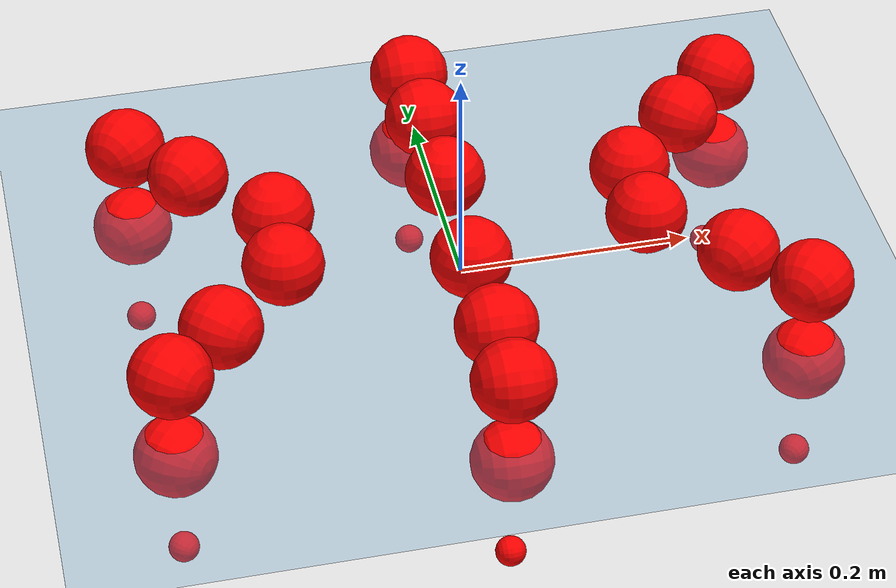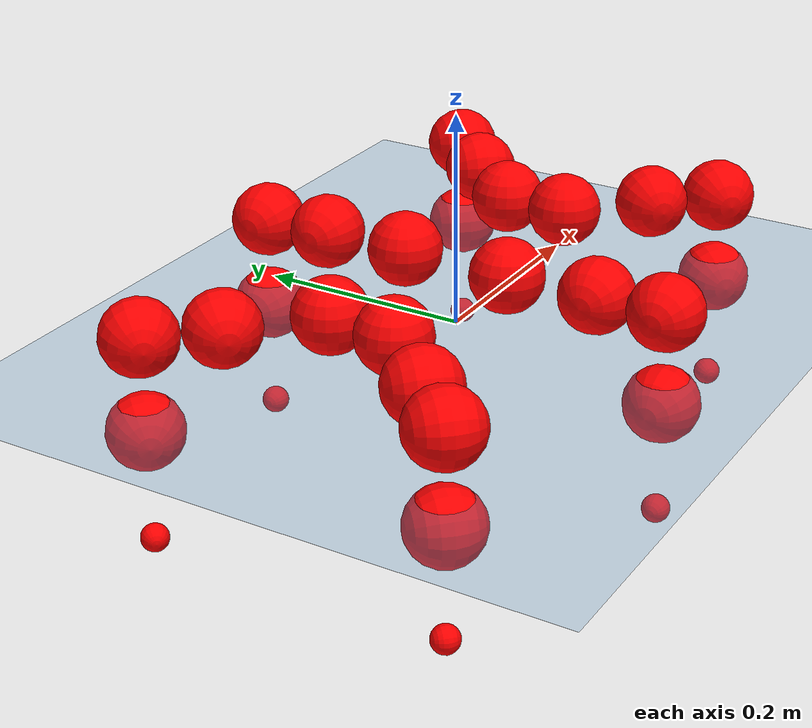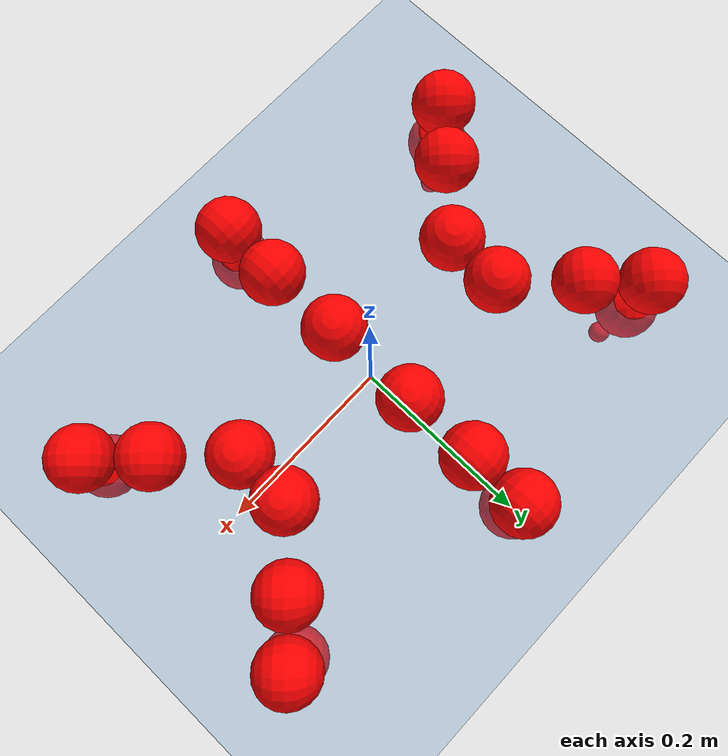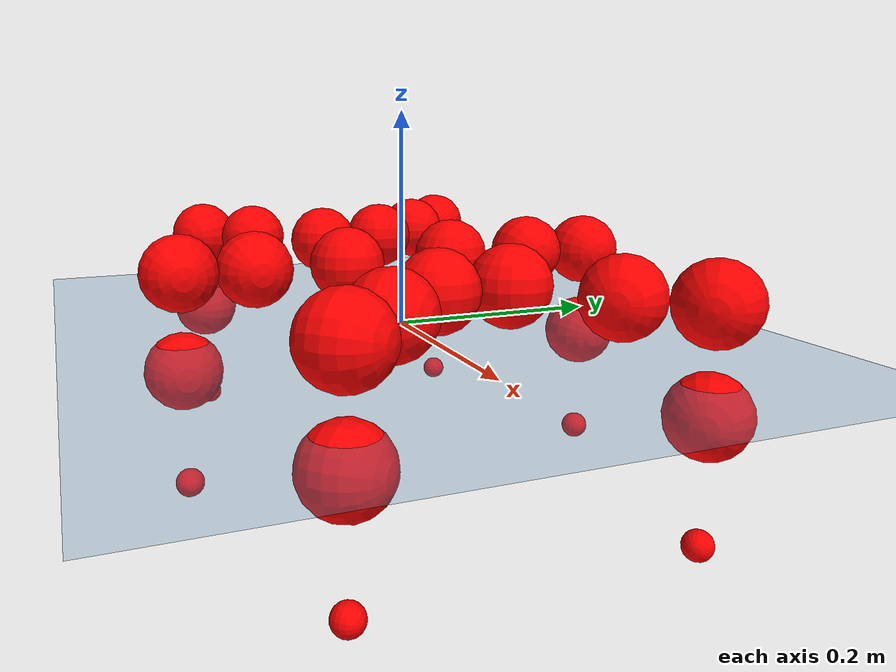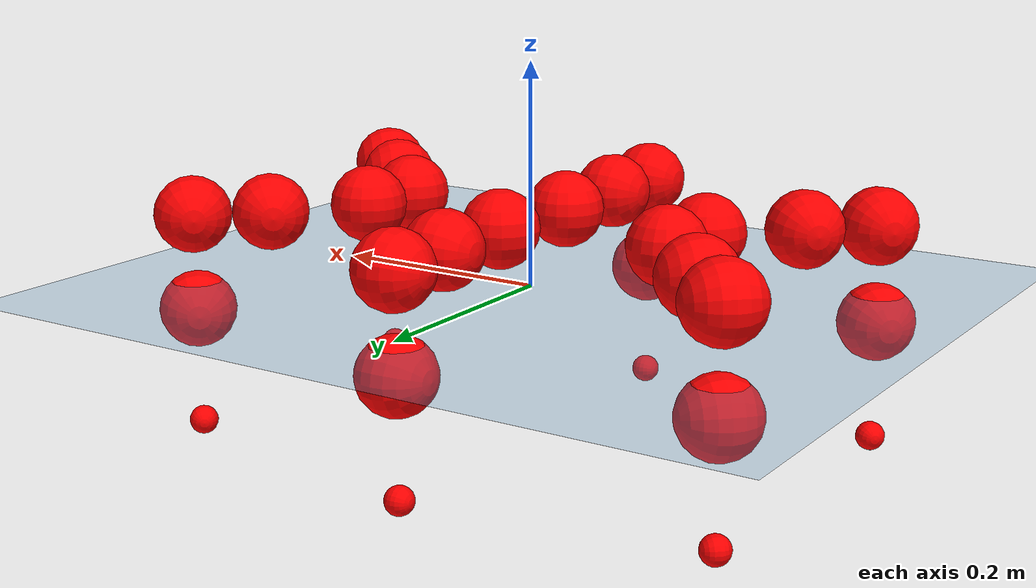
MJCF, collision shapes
<mujoco model="Golem">
  <compiler angle="radian" assetdir="assets" balanceinertia="true" inertiafromgeom="false"/>

  <option timestep="0.005" density="1.2" viscosity="2e-05"/>

  <size nkey="1"/>

  <visual>
    <quality shadowsize="8192"/>
    <map shadowclip="0.5"/>
  </visual>

  <default>
    <default class="/">
      <joint armature="0.01" damping="0.01" frictionloss="0.01"/>
      <geom contype="0" conaffinity="0" group="1" solref="-1000 -80"/>
      <site size="0.01 0.005 0.005" group="5"/>
      <general forcelimited="true" biastype="affine" gainprm="25" biasprm="0 -25 -0.5"/>
      <default class="visual">
        <geom type="mesh" group="2"/>
      </default>
      <default class="collision">
        <geom group="3"/>
      </default>
      <default class="foot">
        <geom size="0.01 0 0" condim="6" group="4" priority="1" solimp="0.015 1 0.01"/>
      </default>
      <default class="reward_collision_sphere">
        <geom group="5" rgba="1 0 0 1"/>
      </default>
    </default>
  </default>

  <asset>
    <texture type="skybox" colorspace="auto" name="//unnamed_texture_0" builtin="gradient" rgb1="0.95 0.95 0.95" rgb2="0.95 0.95 0.95" width="100" height="600"/>
    <texture type="2d" colorspace="auto" name="texplane" builtin="checker" rgb1="0.345 0.575 0.748" rgb2="0.345 0.575 0.748" markrgb="1 1 1" width="512" height="512"/>
    <material name="MatPlane" class="/" texture="texplane" texuniform="true" texrepeat="2 2" specular="0.9"/>
    <mesh name="body" class="/" file="body.stl" scale="0.001 0.001 0.001"/>
    <mesh name="coxa" class="/" file="coxa.stl" scale="0.001 0.001 0.001"/>
    <mesh name="femur" class="/" file="femur.stl" scale="0.001 0.001 0.001"/>
    <mesh name="tibia" class="/" file="tibia.stl" scale="0.001 0.001 0.001"/>
    <mesh name="tarsus" class="/" file="tarsus.stl" scale="0.001 0.001 0.001"/>
  </asset>

  <worldbody>
    <geom name="floor" class="/" size="100 100 0.125" type="plane" group="0" material="MatPlane"/>
    <light name="toplight_shadow" class="/" pos="0 0 5" dir="0.0990148 0.0990148 -0.990148" type="directional" ambient="0.04 0.04 0.04" diffuse="0.55 0.55 0.55" specular="0.12 0.12 0.12"/>
    <light name="toplight_fill" class="/" pos="0 0 5" dir="0.0990148 0.0990148 -0.990148" type="directional" castshadow="false" ambient="0.04 0.04 0.04" diffuse="0.3 0.3 0.3" specular="0.08 0.08 0.08"/>
    <body name="trunk" pos="-0.000539373 -0.000162266 0.000276779" quat="1 -0.00083326 -0.000310021 0.000325299">
      <inertial pos="0.000377275 0.00194616 -0.00145436" quat="0.999997 0.00165407 -0.0011802 0.00112942" mass="2.36655" diaginertia="0.0092313 0.00101115 0.00841768"/>
      <joint name="//unnamed_joint_0" type="free"/>
      <geom name="//unnamed_geom_1" class="/" pos="0 0 0.0621277" quat="1 0 0 0" type="mesh" rgba="0.9 0.9 0.9 1" mesh="body"/>
      <site name="imu" class="/" pos="0.130259 0.00598306 0.100548" size="0.00864505"/>
      <camera name="track" class="/" pos="0 -1.26684 0" quat="0.707107 0.707107 0 0" mode="trackcom"/>
      <camera name="ego_camera" class="/" pos="0.128615 0 0.0970745" quat="-0.5 -0.5 0.5 0.5"/>
      <body name="coxa_RR" pos="-0.176537 -0.052149 0.0619398" quat="0.382166 -0.000514096 0.000139419 -0.924094">
        <inertial pos="-8.89762e-05 -0.000774007 -0.000612821" quat="0.999938 0.00101197 0.0107121 0.00269523" mass="0.135298" diaginertia="0.00966042 0.00102777 0.00889751"/>
        <joint name="coxa_joint_RR" class="/" pos="0 0 0" axis="0.000419309 0.00199624 -0.999998" range="-3.14102 3.09461" armature="0.00956482" damping="0.00565356" frictionloss="0.00855623"/>
        <geom name="//unnamed_geom_2" class="/" type="mesh" rgba="0.2 0.2 0.2 1" mesh="coxa"/>
        <geom name="//unnamed_geom_3" class="reward_collision_sphere" size="0.0345802" pos="-0.0296805 0 0"/>
        <body name="femur_RR" pos="0.0592433 0.00177174 -0.00122149" quat="0.50005 -0.500027 0.499978 0.499945">
          <inertial pos="0.00166344 -0.00107491 0.000475622" quat="0.999969 -0.00598844 -0.00193238 0.00462663" mass="0.129917" diaginertia="0.00944897 0.0010189 0.00863067"/>
          <joint name="femur_joint_RR" class="/" pos="0 0 0" axis="-0.00104426 -0.000306959 -0.999999" range="-3.14708 3.14073" armature="0.0086966" damping="0.00349045" frictionloss="0.00823425"/>
          <geom name="//unnamed_geom_4" class="/" type="mesh" rgba="0.9 0.9 0.9 1" mesh="femur"/>
          <geom name="//unnamed_geom_5" class="reward_collision_sphere" size="0.0345802"/>
          <body name="tibia_RR" pos="0.000716115 -0.0676132 0.000174831" quat="0.000112842 1 7.07303e-05 -6.85144e-05">
            <inertial pos="-0.000638005 0.000755401 0.000222852" quat="0.999989 -0.00171768 0.00358433 -0.00237399" mass="0.132253" diaginertia="0.00932588 0.0010092 0.00866977"/>
            <joint name="tibia_joint_RR" class="/" pos="0 0 0" axis="0.00455094 0.00450467 0.999979" range="-3.12012 3.14399" armature="0.00862906" damping="0.000382947" frictionloss="0.00852129"/>
            <geom name="//unnamed_geom_6" class="/" type="mesh" rgba="0.2 0.2 0.2 1" mesh="tibia"/>
            <geom name="//unnamed_geom_7" class="reward_collision_sphere" size="0.0345802"/>
            <body name="tarsus_RR" pos="0.0860866 0.00171902 0.000215879" quat="1 5.0416e-05 0.000136161 3.81727e-05">
              <inertial pos="0.0609863 0.000296183 0.000883153" quat="0.49972 0.500799 0.499825 0.499656" mass="0.131933" diaginertia="0.00969622 0.00103653 0.00883395"/>
              <joint name="tarsus_joint_RR" class="/" pos="0 0 0" axis="-0.00129261 -0.00164536 0.999998" stiffness="0.00135133" range="-3.13446 3.13922" armature="0.00879974" damping="0.041463" frictionloss="0.008239"/>
              <geom name="//unnamed_geom_8" class="/" type="mesh" rgba="0.9 0.9 0.9 1" mesh="tarsus"/>
              <geom name="foot_1" class="foot" size="0.00874602" pos="0.110807 0 0" quat="0 -0.707107 0 0.707107"/>
              <geom name="//unnamed_geom_10" class="reward_collision_sphere" size="0.0345802"/>
              <geom name="//unnamed_geom_11" class="reward_collision_sphere" size="0.0129676" pos="0.106355 0 0"/>
              <site name="foot_1" class="foot" pos="0.110807 0 0" quat="0 -0.707107 0 0.707107" size="0.00864505"/>
            </body>
          </body>
        </body>
      </body>
      <body name="coxa_RM" pos="-0.00212284 -0.0830775 0.0601292" quat="0.707238 -0.000476238 0.000187846 -0.706975">
        <inertial pos="-0.00134435 0.00035804 0.000745562" quat="0.999999 0.000220449 9.0542e-06 -0.00136809" mass="0.132371" diaginertia="0.00978058 0.00103225 0.00879193"/>
        <joint name="coxa_joint_RM" class="/" pos="0 0 0" axis="-0.00216493 -0.00251022 -0.999995" range="-3.1217 3.13506" armature="0.00885941" damping="0.0101542" frictionloss="0.00878314"/>
        <geom name="//unnamed_geom_12" class="/" type="mesh" rgba="0.2 0.2 0.2 1" mesh="coxa"/>
        <geom name="//unnamed_geom_13" class="reward_collision_sphere" size="0.0345802" pos="-0.0296805 0 0"/>
        <body name="femur_RM" pos="0.0574587 0.00141363 0.000600249" quat="0.499909 -0.499866 0.499967 0.500259">
          <inertial pos="0.00046166 0.000142686 -0.00103401" quat="0.999947 0.000958819 -0.00490478 -0.00901691" mass="0.124348" diaginertia="0.00931027 0.000992883 0.00843424"/>
          <joint name="femur_joint_RM" class="/" pos="0 0 0" axis="-0.000327647 -0.000304569 -1" range="-3.18256 3.15447" armature="0.00885378" damping="0.00901567" frictionloss="0.00861898"/>
          <geom name="//unnamed_geom_14" class="/" type="mesh" rgba="0.9 0.9 0.9 1" mesh="femur"/>
          <geom name="//unnamed_geom_15" class="reward_collision_sphere" size="0.0345802"/>
          <body name="tibia_RM" pos="-0.00042304 -0.0661548 -0.001619" quat="-0.000934341 0.999999 0.000413198 -0.000146242">
            <inertial pos="-0.000487735 -0.0010925 0.00079322" quat="0.999993 0.00226134 -0.00293307 0.000177314" mass="0.128809" diaginertia="0.00942241 0.000992827 0.00833188"/>
            <joint name="tibia_joint_RM" class="/" pos="0 0 0" axis="-0.00026268 0.000322529 1" range="-3.13951 3.14053" armature="0.0085136" damping="5.7707e-05" frictionloss="0.00895297"/>
            <geom name="//unnamed_geom_16" class="/" type="mesh" rgba="0.2 0.2 0.2 1" mesh="tibia"/>
            <geom name="//unnamed_geom_17" class="reward_collision_sphere" size="0.0345802"/>
            <body name="tarsus_RM" pos="0.0877448 0.000244656 -8.30894e-05" quat="1 2.49991e-05 0.000766278 9.89087e-05">
              <inertial pos="0.0596752 0.000161715 0.000202119" quat="0.497519 0.5002 0.503954 0.498302" mass="0.128747" diaginertia="0.00943951 0.00101552 0.00850506"/>
              <joint name="tarsus_joint_RM" class="/" pos="0 0 0" axis="-0.00566849 -0.00317913 0.999979" range="-3.14673 3.18203" armature="0.00880657" damping="0.0069183" frictionloss="0.007711"/>
              <geom name="//unnamed_geom_18" class="/" type="mesh" rgba="0.9 0.9 0.9 1" mesh="tarsus"/>
              <geom name="foot_2" class="foot" size="0.00835977" pos="0.110807 0 0" quat="0 -0.707107 0 0.707107"/>
              <geom name="//unnamed_geom_20" class="reward_collision_sphere" size="0.0345802"/>
              <geom name="//unnamed_geom_21" class="reward_collision_sphere" size="0.0129676" pos="0.106355 0 0"/>
              <site name="foot_2" class="foot" pos="0.110807 0 0" quat="0 -0.707107 0 0.707107" size="0.00864505"/>
            </body>
          </body>
        </body>
      </body>
      <body name="coxa_RF" pos="0.174475 -0.0516597 0.0616464" quat="0.923689 0.000247155 0.000428643 -0.383144">
        <inertial pos="0.0019058 0.00178881 3.64371e-05" quat="1 0.0002485 0.000304834 -0.000109353" mass="0.129768" diaginertia="0.00956334 0.00102324 0.00861057"/>
        <joint name="coxa_joint_RF" class="/" pos="0 0 0" axis="0.000299576 -4.98318e-05 -1" range="-3.15513 3.10193" armature="0.0091063" damping="0.0101111" frictionloss="0.00882889"/>
        <geom name="//unnamed_geom_22" class="/" type="mesh" rgba="0.2 0.2 0.2 1" mesh="coxa"/>
        <geom name="//unnamed_geom_23" class="reward_collision_sphere" size="0.0345802" pos="-0.0296805 0 0"/>
        <body name="femur_RF" pos="0.0582582 -0.000225587 -0.00061367" quat="0.499647 -0.50053 0.499964 0.499858">
          <inertial pos="3.83768e-05 4.03952e-05 0.00214776" quat="0.999979 -0.00216651 0.00403703 -0.00449839" mass="0.126002" diaginertia="0.00923924 0.000994354 0.00821475"/>
          <joint name="femur_joint_RF" class="/" pos="0 0 0" axis="0.0104726 -0.0025204 -0.999942" range="-3.14957 3.14616" armature="0.00964637" damping="0.00934204" frictionloss="0.00896471"/>
          <geom name="//unnamed_geom_24" class="/" type="mesh" rgba="0.9 0.9 0.9 1" mesh="femur"/>
          <geom name="//unnamed_geom_25" class="reward_collision_sphere" size="0.0345802"/>
          <body name="tibia_RF" pos="0.000749172 -0.0687006 -0.00036733" quat="0.000272755 1 0.000281671 -1.19447e-05">
            <inertial pos="0.00040863 0.000269161 0.000438008" quat="0.99999 -0.000913302 -0.00163508 0.00401516" mass="0.12813" diaginertia="0.00939096 0.00100455 0.00876194"/>
            <joint name="tibia_joint_RF" class="/" pos="0 0 0" axis="-0.00038607 0.00147864 0.999999" range="-3.14027 3.17399" armature="0.00880093" damping="0.00908912" frictionloss="0.00821353"/>
            <geom name="//unnamed_geom_26" class="/" type="mesh" rgba="0.2 0.2 0.2 1" mesh="tibia"/>
            <geom name="//unnamed_geom_27" class="reward_collision_sphere" size="0.0345802"/>
            <body name="tarsus_RF" pos="0.0859587 -2.81072e-05 0.000629612" quat="0.999999 -0.000243812 -0.000291644 0.000932443">
              <inertial pos="0.0590454 -8.88276e-06 -0.000168021" quat="0.499789 0.500154 0.499938 0.500119" mass="0.129363" diaginertia="0.00947901 0.00101636 0.00847184"/>
              <joint name="tarsus_joint_RF" class="/" pos="0 0 0" axis="0.00304271 0.00807154 0.999963" range="-3.14259 3.1303" armature="0.00862328" damping="0.00997485" frictionloss="0.00858746"/>
              <geom name="//unnamed_geom_28" class="/" type="mesh" rgba="0.9 0.9 0.9 1" mesh="tarsus"/>
              <geom name="foot_3" class="foot" size="0.00897068" pos="0.110807 0 0" quat="0 -0.707107 0 0.707107"/>
              <geom name="//unnamed_geom_30" class="reward_collision_sphere" size="0.0345802"/>
              <geom name="//unnamed_geom_31" class="reward_collision_sphere" size="0.0129676" pos="0.106355 0 0"/>
              <site name="foot_3" class="foot" pos="0.110807 0 0" quat="0 -0.707107 0 0.707107" size="0.00864505"/>
            </body>
          </body>
        </body>
      </body>
      <body name="coxa_LR" pos="-0.173916 0.0540472 0.0640532" quat="0.382978 0.000627299 0.000126335 0.923757">
        <inertial pos="0.000445489 -0.000204037 -0.000341357" quat="0.999999 -0.000994488 0.000286562 -0.000617785" mass="0.130238" diaginertia="0.00930239 0.00102161 0.00837264"/>
        <joint name="coxa_joint_LR" class="/" pos="0 0 0" axis="-0.0107165 -0.00170742 -0.999941" range="-3.1166 3.137" armature="0.00900323" damping="0.00626896" frictionloss="0.00850208"/>
        <geom name="//unnamed_geom_32" class="/" type="mesh" rgba="0.2 0.2 0.2 1" mesh="coxa"/>
        <geom name="//unnamed_geom_33" class="reward_collision_sphere" size="0.0345802" pos="-0.0296805 0 0"/>
        <body name="femur_LR" pos="0.0612463 -0.00234388 -0.00188146" quat="0.500458 -0.49963 0.499934 0.499976">
          <inertial pos="-0.00030509 -0.000533197 -0.000915738" quat="0.999989 -0.00238665 0.00348827 0.00216679" mass="0.127497" diaginertia="0.00939542 0.00102492 0.00859741"/>
          <joint name="femur_joint_LR" class="/" pos="0 0 0" axis="0.000252779 -0.00363979 0.999993" range="-3.1725 3.16965" armature="0.00856822" damping="0" frictionloss="0.00903705"/>
          <geom name="//unnamed_geom_34" class="/" type="mesh" rgba="0.9 0.9 0.9 1" mesh="femur"/>
          <geom name="//unnamed_geom_35" class="reward_collision_sphere" size="0.0345802"/>
          <body name="tibia_LR" pos="0.000569414 -0.0688856 -0.00218768" quat="-0.00016376 1 -0.000108301 -0.000338116">
            <inertial pos="-0.0024182 0.00109675 -0.00160237" quat="0.999999 -6.88003e-05 0.00112279 -0.000395104" mass="0.129112" diaginertia="0.00940974 0.0010338 0.00857891"/>
            <joint name="tibia_joint_LR" class="/" pos="0 0 0" axis="0.000863276 0.00195379 -0.999998" range="-3.10474 3.15625" armature="0.00891415" damping="0.00320163" frictionloss="0.00907798"/>
            <geom name="//unnamed_geom_36" class="/" type="mesh" rgba="0.2 0.2 0.2 1" mesh="tibia"/>
            <geom name="//unnamed_geom_37" class="reward_collision_sphere" size="0.0345802"/>
            <body name="tarsus_LR" pos="0.0886622 0.000744172 0.00086022" quat="1 8.38774e-06 -7.03973e-05 -0.000195295">
              <inertial pos="0.0601679 0.000266029 -0.000728775" quat="0.498869 0.500302 0.500374 0.500453" mass="0.133036" diaginertia="0.00970943 0.00104173 0.00879042"/>
              <joint name="tarsus_joint_LR" class="/" pos="0 0 0" axis="-0.00266059 -0.0105493 -0.999941" stiffness="0.000402701" range="-3.14198 3.12473" armature="0.00867754" damping="0.0276268" frictionloss="0.00897882"/>
              <geom name="//unnamed_geom_38" class="/" type="mesh" rgba="0.9 0.9 0.9 1" mesh="tarsus"/>
              <geom name="foot_4" class="foot" size="0.0082249" pos="0.110807 0 0" quat="0.707107 0 -0.707107 0"/>
              <geom name="//unnamed_geom_40" class="reward_collision_sphere" size="0.0345802"/>
              <geom name="//unnamed_geom_41" class="reward_collision_sphere" size="0.0129676" pos="0.106355 0 0"/>
              <site name="foot_4" class="foot" pos="0.110807 0 0" quat="0.707107 0 -0.707107 0" size="0.00864505"/>
            </body>
          </body>
        </body>
      </body>
      <body name="coxa_LM" pos="-0.00169851 0.0815392 0.0626282" quat="0.707087 0.000145336 0.000191361 0.707127">
        <inertial pos="0.00209215 0.00199918 -0.000212771" quat="1 0.000127519 0.00020458 -0.000200067" mass="0.129164" diaginertia="0.00935982 0.00101757 0.00860667"/>
        <joint name="coxa_joint_LM" class="/" pos="0 0 0" axis="5.63616e-06 -6.17218e-05 -1" range="-3.14087 3.14086" armature="0.0091958" damping="0.00722185" frictionloss="0.00854455"/>
        <geom name="//unnamed_geom_42" class="/" type="mesh" rgba="0.2 0.2 0.2 1" mesh="coxa"/>
        <geom name="//unnamed_geom_43" class="reward_collision_sphere" size="0.0345802" pos="-0.0296805 0 0"/>
        <body name="femur_LM" pos="0.0541055 0.00070695 -0.000384745" quat="0.499321 -0.500878 0.499805 0.499995">
          <inertial pos="-0.000309281 -0.00038406 0.00016687" quat="0.999991 -0.00226709 0.000182107 0.00350062" mass="0.128086" diaginertia="0.0094837 0.00100693 0.00847095"/>
          <joint name="femur_joint_LM" class="/" pos="0 0 0" axis="0.000624713 -0.000168187 1" range="-3.15953 3.13706" armature="0.00777942" damping="0" frictionloss="0.0088576"/>
          <geom name="//unnamed_geom_44" class="/" type="mesh" rgba="0.9 0.9 0.9 1" mesh="femur"/>
          <geom name="//unnamed_geom_45" class="reward_collision_sphere" size="0.0345802"/>
          <body name="tibia_LM" pos="0.00195632 -0.0667474 -8.47979e-05" quat="-2.53907e-05 1 6.32272e-05 7.74007e-05">
            <inertial pos="-0.0012909 -0.000900513 -0.000633165" quat="0.999988 -0.000221973 0.00201147 -0.00456264" mass="0.12674" diaginertia="0.00941725 0.00103315 0.00879764"/>
            <joint name="tibia_joint_LM" class="/" pos="0 0 0" axis="-0.000673956 -0.00122728 -0.999999" range="-3.12048 3.1511" armature="0.00866121" damping="0" frictionloss="0.00869687"/>
            <geom name="//unnamed_geom_46" class="/" type="mesh" rgba="0.2 0.2 0.2 1" mesh="tibia"/>
            <geom name="//unnamed_geom_47" class="reward_collision_sphere" size="0.0345802"/>
            <body name="tarsus_LM" pos="0.0866575 0.00113406 -0.00180118" quat="1 7.32142e-05 0.000109112 6.47971e-05">
              <inertial pos="0.0606539 -0.000978944 -4.63693e-05" quat="0.49827 0.500564 0.501533 0.499627" mass="0.135108" diaginertia="0.00956783 0.0010454 0.00862973"/>
              <joint name="tarsus_joint_LM" class="/" pos="0 0 0" axis="0.00274311 0.0062398 -0.999977" stiffness="0.00470228" range="-3.13921 3.13351" armature="0.00876767" damping="0.0137915" frictionloss="0.00865204"/>
              <geom name="//unnamed_geom_48" class="/" type="mesh" rgba="0.9 0.9 0.9 1" mesh="tarsus"/>
              <geom name="foot_5" class="foot" size="0.00835249" pos="0.110807 0 0" quat="0.707107 0 -0.707107 0"/>
              <geom name="//unnamed_geom_50" class="reward_collision_sphere" size="0.0345802"/>
              <geom name="//unnamed_geom_51" class="reward_collision_sphere" size="0.0129676" pos="0.106355 0 0"/>
              <site name="foot_5" class="foot" pos="0.110807 0 0" quat="0.707107 0 -0.707107 0" size="0.00864505"/>
            </body>
          </body>
        </body>
      </body>
      <body name="coxa_LF" pos="0.176484 0.0528645 0.0619773" quat="0.923863 0.000332417 4.21154e-05 0.382723">
        <inertial pos="0.000257332 -0.000632944 -0.000146248" quat="1 -0.000118482 -9.2889e-05 0.000211392" mass="0.126527" diaginertia="0.00936852 0.00101771 0.00858136"/>
        <joint name="coxa_joint_LF" class="/" pos="0 0 0" axis="0.00201618 -0.00376036 -0.999991" range="-3.12816 3.15495" armature="0.00836587" damping="0.00277316" frictionloss="0.00866972"/>
        <geom name="//unnamed_geom_52" class="/" type="mesh" rgba="0.2 0.2 0.2 1" mesh="coxa"/>
        <geom name="//unnamed_geom_53" class="reward_collision_sphere" size="0.0345802" pos="-0.0296805 0 0"/>
        <body name="femur_LF" pos="0.0589817 0.00257501 -0.00261876" quat="0.499911 -0.500204 0.500277 0.499607">
          <inertial pos="-0.00135716 -0.000875316 0.000783606" quat="1 0.00035664 3.90413e-05 -4.56446e-05" mass="0.130506" diaginertia="0.00938755 0.00101324 0.0086313"/>
          <joint name="femur_joint_LF" class="/" pos="0 0 0" axis="-0.00615301 0.0057742 0.999964" range="-3.14213 3.10689" armature="0.00824148" damping="0.000394056" frictionloss="0.00846658"/>
          <geom name="//unnamed_geom_54" class="/" type="mesh" rgba="0.9 0.9 0.9 1" mesh="femur"/>
          <geom name="//unnamed_geom_55" class="reward_collision_sphere" size="0.0345802"/>
          <body name="tibia_LF" pos="-0.00115936 -0.068693 0.000259232" quat="-0.000157475 1 0.000122253 -3.0686e-05">
            <inertial pos="-0.000991901 -0.000601164 0.000203999" quat="0.999965 -0.00734459 -0.00365821 -0.0016266" mass="0.127794" diaginertia="0.00946163 0.00100348 0.0085489"/>
            <joint name="tibia_joint_LF" class="/" pos="0 0 0" axis="-0.00510958 -0.00247293 -0.999984" range="-3.14536 3.14882" armature="0.00769774" damping="0.00291145" frictionloss="0.0086792"/>
            <geom name="//unnamed_geom_56" class="/" type="mesh" rgba="0.2 0.2 0.2 1" mesh="tibia"/>
            <geom name="//unnamed_geom_57" class="reward_collision_sphere" size="0.0345802"/>
            <body name="tarsus_LF" pos="0.087329 -0.000606174 0.000248141" quat="0.999999 0.000104828 -0.000722934 0.000846795">
              <inertial pos="0.0605389 -0.00112265 0.000543459" quat="0.499174 0.500805 0.499607 0.500413" mass="0.128487" diaginertia="0.00948093 0.00100825 0.00853399"/>
              <joint name="tarsus_joint_LF" class="/" pos="0 0 0" axis="0.00781412 0.00259095 -0.999966" stiffness="0.00191558" range="-3.11282 3.1474" armature="0.00887455" damping="0.0148682" frictionloss="0.00873965"/>
              <geom name="//unnamed_geom_58" class="/" type="mesh" rgba="0.9 0.9 0.9 1" mesh="tarsus"/>
              <geom name="foot_6" class="foot" size="0.00823838" pos="0.110807 0 0" quat="0.707107 0 -0.707107 0"/>
              <geom name="//unnamed_geom_60" class="reward_collision_sphere" size="0.0345802"/>
              <geom name="//unnamed_geom_61" class="reward_collision_sphere" size="0.0129676" pos="0.106355 0 0"/>
              <site name="foot_6" class="foot" pos="0.110807 0 0" quat="0.707107 0 -0.707107 0" size="0.00864505"/>
            </body>
          </body>
        </body>
      </body>
    </body>
  </worldbody>

  <contact>
    <pair class="/" geom1="floor" geom2="foot_1" name="//unnamed_contact_0"/>
    <pair class="/" geom1="floor" geom2="foot_2" name="//unnamed_contact_1"/>
    <pair class="/" geom1="floor" geom2="foot_3" name="//unnamed_contact_2"/>
    <pair class="/" geom1="floor" geom2="foot_4" name="//unnamed_contact_3"/>
    <pair class="/" geom1="floor" geom2="foot_5" name="//unnamed_contact_4"/>
    <pair class="/" geom1="floor" geom2="foot_6" name="//unnamed_contact_5"/>
  </contact>

  <actuator>
    <general name="coxa_joint_RR" class="/" joint="coxa_joint_RR" forcerange="-6.44045 6.44045" gainprm="20.6366" biasprm="0 -20.6366 -0.44528"/>
    <general name="femur_joint_RR" class="/" joint="femur_joint_RR" forcerange="-6.33461 6.33461" gainprm="20.6366" biasprm="0 -20.6366 -0.44528"/>
    <general name="tibia_joint_RR" class="/" joint="tibia_joint_RR" forcerange="-6.34288 6.34288" gainprm="20.6366" biasprm="0 -20.6366 -0.44528"/>
    <general name="tarsus_joint_RR" class="/" joint="tarsus_joint_RR" forcerange="-6.49626 6.49626" gainprm="20.6366" biasprm="0 -20.6366 -0.44528"/>
    <general name="coxa_joint_RM" class="/" joint="coxa_joint_RM" forcerange="-6.52812 6.52812" gainprm="20.6366" biasprm="0 -20.6366 -0.44528"/>
    <general name="femur_joint_RM" class="/" joint="femur_joint_RM" forcerange="-6.10998 6.10998" gainprm="20.6366" biasprm="0 -20.6366 -0.44528"/>
    <general name="tibia_joint_RM" class="/" joint="tibia_joint_RM" forcerange="-6.33672 6.33672" gainprm="20.6366" biasprm="0 -20.6366 -0.44528"/>
    <general name="tarsus_joint_RM" class="/" joint="tarsus_joint_RM" forcerange="-6.07398 6.07398" gainprm="20.6366" biasprm="0 -20.6366 -0.44528"/>
    <general name="coxa_joint_RF" class="/" joint="coxa_joint_RF" forcerange="-6.0482 6.0482" gainprm="20.6366" biasprm="0 -20.6366 -0.44528"/>
    <general name="femur_joint_RF" class="/" joint="femur_joint_RF" forcerange="-6.16437 6.16437" gainprm="20.6366" biasprm="0 -20.6366 -0.44528"/>
    <general name="tibia_joint_RF" class="/" joint="tibia_joint_RF" forcerange="-6.41283 6.41283" gainprm="20.6366" biasprm="0 -20.6366 -0.44528"/>
    <general name="tarsus_joint_RF" class="/" joint="tarsus_joint_RF" forcerange="-6.09719 6.09719" gainprm="20.6366" biasprm="0 -20.6366 -0.44528"/>
    <general name="coxa_joint_LR" class="/" joint="coxa_joint_LR" forcerange="-6.19443 6.19443" gainprm="20.6366" biasprm="0 -20.6366 -0.44528"/>
    <general name="femur_joint_LR" class="/" joint="femur_joint_LR" forcerange="-6.43461 6.43461" gainprm="20.6366" biasprm="0 -20.6366 -0.44528"/>
    <general name="tibia_joint_LR" class="/" joint="tibia_joint_LR" forcerange="-5.87765 5.87765" gainprm="20.6366" biasprm="0 -20.6366 -0.44528"/>
    <general name="tarsus_joint_LR" class="/" joint="tarsus_joint_LR" forcerange="-6.79331 6.79331" gainprm="20.6366" biasprm="0 -20.6366 -0.44528"/>
    <general name="coxa_joint_LM" class="/" joint="coxa_joint_LM" forcerange="-6.15568 6.15568" gainprm="20.6366" biasprm="0 -20.6366 -0.44528"/>
    <general name="femur_joint_LM" class="/" joint="femur_joint_LM" forcerange="-6.30146 6.30146" gainprm="20.6366" biasprm="0 -20.6366 -0.44528"/>
    <general name="tibia_joint_LM" class="/" joint="tibia_joint_LM" forcerange="-6.32597 6.32597" gainprm="20.6366" biasprm="0 -20.6366 -0.44528"/>
    <general name="tarsus_joint_LM" class="/" joint="tarsus_joint_LM" forcerange="-6.54075 6.54075" gainprm="20.6366" biasprm="0 -20.6366 -0.44528"/>
    <general name="coxa_joint_LF" class="/" joint="coxa_joint_LF" forcerange="-6.27996 6.27996" gainprm="20.6366" biasprm="0 -20.6366 -0.44528"/>
    <general name="femur_joint_LF" class="/" joint="femur_joint_LF" forcerange="-6.29399 6.29399" gainprm="20.6366" biasprm="0 -20.6366 -0.44528"/>
    <general name="tibia_joint_LF" class="/" joint="tibia_joint_LF" forcerange="-6.07438 6.07438" gainprm="20.6366" biasprm="0 -20.6366 -0.44528"/>
    <general name="tarsus_joint_LF" class="/" joint="tarsus_joint_LF" forcerange="-6.18253 6.18253" gainprm="20.6366" biasprm="0 -20.6366 -0.44528"/>
  </actuator>

  <sensor>
    <gyro site="imu" name="imu_angular_velocity"/>
    <velocimeter site="imu" name="imu_linear_velocity"/>
    <framelinvel objtype="site" objname="foot_1" name="foot_1_global_linear_velocity"/>
    <framelinvel objtype="site" objname="foot_2" name="foot_2_global_linear_velocity"/>
    <framelinvel objtype="site" objname="foot_3" name="foot_3_global_linear_velocity"/>
    <framelinvel objtype="site" objname="foot_4" name="foot_4_global_linear_velocity"/>
    <framelinvel objtype="site" objname="foot_5" name="foot_5_global_linear_velocity"/>
    <framelinvel objtype="site" objname="foot_6" name="foot_6_global_linear_velocity"/>
  </sensor>

  <keyframe>
    <key name="home" qpos="0 0 0.1457 1 0 0 0 0 0 0 0 0 0 0 0 0 0 0 0 0 0 0 0 0 0 0 0 0 0 0 0"/>
  </keyframe>
</mujoco>
